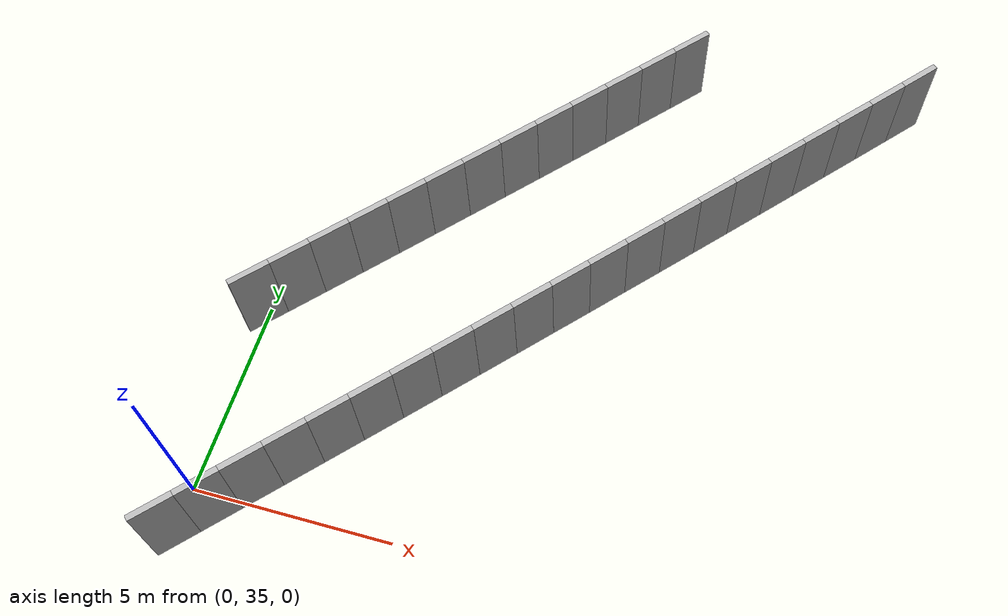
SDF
<?xml version="1.0" ?>
<sdf version="1.6">
  <model name="sps_4009">
    <pose frame="">0 0 0 0 -0 0</pose>
    <static>1</static>
    <self_collide>0</self_collide>
    <allow_auto_disable>0</allow_auto_disable>
    <link name="Wall3390">
      <kinematic>0</kinematic>
      <gravity>1</gravity>
      <self_collide>0</self_collide>
      <collision name="collision">
        <geometry>
          <box>
            <size>1.07602 0.15 2.5</size>
          </box>
        </geometry>
        <pose frame="">0 0 0 0 -0 0</pose>
      </collision>
      <visual name="visual">
        <geometry>
          <box>
            <size>1.07602 0.15 2.5</size>
          </box>
        </geometry>
        <pose frame="">0 0 0 0 -0 0</pose>
        <cast_shadows>1</cast_shadows>
        <transparency>0.0</transparency>
      </visual>
      <pose frame="">0.0122292 39.7161 1.25 0 -0 0.832745</pose>
    </link>
    <link name="Wall3391">
      <kinematic>0</kinematic>
      <gravity>1</gravity>
      <self_collide>0</self_collide>
      <collision name="collision">
        <geometry>
          <box>
            <size>1.07595 0.15 2.5</size>
          </box>
        </geometry>
        <pose frame="">0 0 0 0 -0 0</pose>
      </collision>
      <visual name="visual">
        <geometry>
          <box>
            <size>1.07595 0.15 2.5</size>
          </box>
        </geometry>
        <pose frame="">0 0 0 0 -0 0</pose>
        <cast_shadows>1</cast_shadows>
        <transparency>0.0</transparency>
      </visual>
      <pose frame="">0.73574 40.5125 1.25 0 -0 0.833912</pose>
    </link>
    <link name="Wall3392">
      <kinematic>0</kinematic>
      <gravity>1</gravity>
      <self_collide>0</self_collide>
      <collision name="collision">
        <geometry>
          <box>
            <size>1.07601 0.15 2.5</size>
          </box>
        </geometry>
        <pose frame="">0 0 0 0 -0 0</pose>
      </collision>
      <visual name="visual">
        <geometry>
          <box>
            <size>1.07601 0.15 2.5</size>
          </box>
        </geometry>
        <pose frame="">0 0 0 0 -0 0</pose>
        <cast_shadows>1</cast_shadows>
        <transparency>0.0</transparency>
      </visual>
      <pose frame="">1.45837 41.3097 1.25 0 -0 0.834954</pose>
    </link>
    <link name="Wall3393">
      <kinematic>0</kinematic>
      <gravity>1</gravity>
      <self_collide>0</self_collide>
      <collision name="collision">
        <geometry>
          <box>
            <size>1.07602 0.15 2.5</size>
          </box>
        </geometry>
        <pose frame="">0 0 0 0 -0 0</pose>
      </collision>
      <visual name="visual">
        <geometry>
          <box>
            <size>1.07602 0.15 2.5</size>
          </box>
        </geometry>
        <pose frame="">0 0 0 0 -0 0</pose>
        <cast_shadows>1</cast_shadows>
        <transparency>0.0</transparency>
      </visual>
      <pose frame="">2.18017 42.1077 1.25 0 -0 0.836038</pose>
    </link>
    <link name="Wall3394">
      <kinematic>0</kinematic>
      <gravity>1</gravity>
      <self_collide>0</self_collide>
      <collision name="collision">
        <geometry>
          <box>
            <size>1.07584 0.15 2.5</size>
          </box>
        </geometry>
        <pose frame="">0 0 0 0 -0 0</pose>
      </collision>
      <visual name="visual">
        <geometry>
          <box>
            <size>1.07584 0.15 2.5</size>
          </box>
        </geometry>
        <pose frame="">0 0 0 0 -0 0</pose>
        <cast_shadows>1</cast_shadows>
        <transparency>0.0</transparency>
      </visual>
      <pose frame="">2.90096 42.9065 1.25 0 -0 0.837332</pose>
    </link>
    <link name="Wall3395">
      <kinematic>0</kinematic>
      <gravity>1</gravity>
      <self_collide>0</self_collide>
      <collision name="collision">
        <geometry>
          <box>
            <size>1.07585 0.15 2.5</size>
          </box>
        </geometry>
        <pose frame="">0 0 0 0 -0 0</pose>
      </collision>
      <visual name="visual">
        <geometry>
          <box>
            <size>1.07585 0.15 2.5</size>
          </box>
        </geometry>
        <pose frame="">0 0 0 0 -0 0</pose>
        <cast_shadows>1</cast_shadows>
        <transparency>0.0</transparency>
      </visual>
      <pose frame="">3.62075 43.7061 1.25 0 -0 0.838416</pose>
    </link>
    <link name="Wall3396">
      <kinematic>0</kinematic>
      <gravity>1</gravity>
      <self_collide>0</self_collide>
      <collision name="collision">
        <geometry>
          <box>
            <size>1.07614 0.15 2.5</size>
          </box>
        </geometry>
        <pose frame="">0 0 0 0 -0 0</pose>
      </collision>
      <visual name="visual">
        <geometry>
          <box>
            <size>1.07614 0.15 2.5</size>
          </box>
        </geometry>
        <pose frame="">0 0 0 0 -0 0</pose>
        <cast_shadows>1</cast_shadows>
        <transparency>0.0</transparency>
      </visual>
      <pose frame="">4.33974 44.5066 1.25 0 -0 0.839566</pose>
    </link>
    <link name="Wall3397">
      <kinematic>0</kinematic>
      <gravity>1</gravity>
      <self_collide>0</self_collide>
      <collision name="collision">
        <geometry>
          <box>
            <size>1.07599 0.15 2.5</size>
          </box>
        </geometry>
        <pose frame="">0 0 0 0 -0 0</pose>
      </collision>
      <visual name="visual">
        <geometry>
          <box>
            <size>1.07599 0.15 2.5</size>
          </box>
        </geometry>
        <pose frame="">0 0 0 0 -0 0</pose>
        <cast_shadows>1</cast_shadows>
        <transparency>0.0</transparency>
      </visual>
      <pose frame="">5.05785 45.308 1.25 0 -0 0.840739</pose>
    </link>
    <link name="Wall3398">
      <kinematic>0</kinematic>
      <gravity>1</gravity>
      <self_collide>0</self_collide>
      <collision name="collision">
        <geometry>
          <box>
            <size>1.07558 0.15 2.5</size>
          </box>
        </geometry>
        <pose frame="">0 0 0 0 -0 0</pose>
      </collision>
      <visual name="visual">
        <geometry>
          <box>
            <size>1.07558 0.15 2.5</size>
          </box>
        </geometry>
        <pose frame="">0 0 0 0 -0 0</pose>
        <cast_shadows>1</cast_shadows>
        <transparency>0.0</transparency>
      </visual>
      <pose frame="">5.77486 46.11 1.25 0 -0 0.841845</pose>
    </link>
    <link name="Wall3399">
      <kinematic>0</kinematic>
      <gravity>1</gravity>
      <self_collide>0</self_collide>
      <collision name="collision">
        <geometry>
          <box>
            <size>1.07595 0.15 2.5</size>
          </box>
        </geometry>
        <pose frame="">0 0 0 0 -0 0</pose>
      </collision>
      <visual name="visual">
        <geometry>
          <box>
            <size>1.07595 0.15 2.5</size>
          </box>
        </geometry>
        <pose frame="">0 0 0 0 -0 0</pose>
        <cast_shadows>1</cast_shadows>
        <transparency>0.0</transparency>
      </visual>
      <pose frame="">6.49096 46.9128 1.25 0 -0 0.84299</pose>
    </link>
    <link name="Wall3400">
      <kinematic>0</kinematic>
      <gravity>1</gravity>
      <self_collide>0</self_collide>
      <collision name="collision">
        <geometry>
          <box>
            <size>1.07598 0.15 2.5</size>
          </box>
        </geometry>
        <pose frame="">0 0 0 0 -0 0</pose>
      </collision>
      <visual name="visual">
        <geometry>
          <box>
            <size>1.07598 0.15 2.5</size>
          </box>
        </geometry>
        <pose frame="">0 0 0 0 -0 0</pose>
        <cast_shadows>1</cast_shadows>
        <transparency>0.0</transparency>
      </visual>
      <pose frame="">7.20626 47.7166 1.25 0 -0 0.844154</pose>
    </link>
    <link name="Wall3401">
      <kinematic>0</kinematic>
      <gravity>1</gravity>
      <self_collide>0</self_collide>
      <collision name="collision">
        <geometry>
          <box>
            <size>1.07587 0.15 2.5</size>
          </box>
        </geometry>
        <pose frame="">0 0 0 0 -0 0</pose>
      </collision>
      <visual name="visual">
        <geometry>
          <box>
            <size>1.07587 0.15 2.5</size>
          </box>
        </geometry>
        <pose frame="">0 0 0 0 -0 0</pose>
        <cast_shadows>1</cast_shadows>
        <transparency>0.0</transparency>
      </visual>
      <pose frame="">7.92068 48.5211 1.25 0 -0 0.845125</pose>
    </link>
    <link name="Wall3402">
      <kinematic>0</kinematic>
      <gravity>1</gravity>
      <self_collide>0</self_collide>
      <collision name="collision">
        <geometry>
          <box>
            <size>1.07612 0.15 2.5</size>
          </box>
        </geometry>
        <pose frame="">0 0 0 0 -0 0</pose>
      </collision>
      <visual name="visual">
        <geometry>
          <box>
            <size>1.07612 0.15 2.5</size>
          </box>
        </geometry>
        <pose frame="">0 0 0 0 -0 0</pose>
        <cast_shadows>1</cast_shadows>
        <transparency>0.0</transparency>
      </visual>
      <pose frame="">8.63427 49.3264 1.25 0 -0 0.846316</pose>
    </link>
    <link name="Wall4188">
      <kinematic>0</kinematic>
      <gravity>1</gravity>
      <self_collide>0</self_collide>
      <collision name="collision">
        <geometry>
          <box>
            <size>1.08089 0.15 2.5</size>
          </box>
        </geometry>
        <pose frame="">0 0 0 0 -0 0</pose>
      </collision>
      <visual name="visual">
        <geometry>
          <box>
            <size>1.08089 0.15 2.5</size>
          </box>
        </geometry>
        <pose frame="">0 0 0 0 -0 0</pose>
        <cast_shadows>1</cast_shadows>
        <transparency>0.0</transparency>
      </visual>
      <pose frame="">0.158744 33.7386 1.25 0 -0 0.828055</pose>
    </link>
    <link name="Wall4189">
      <kinematic>0</kinematic>
      <gravity>1</gravity>
      <self_collide>0</self_collide>
      <collision name="collision">
        <geometry>
          <box>
            <size>1.08065 0.15 2.5</size>
          </box>
        </geometry>
        <pose frame="">0 0 0 0 -0 0</pose>
      </collision>
      <visual name="visual">
        <geometry>
          <box>
            <size>1.08065 0.15 2.5</size>
          </box>
        </geometry>
        <pose frame="">0 0 0 0 -0 0</pose>
        <cast_shadows>1</cast_shadows>
        <transparency>0.0</transparency>
      </visual>
      <pose frame="">0.889152 34.5352 1.25 0 -0 0.829383</pose>
    </link>
    <link name="Wall4190">
      <kinematic>0</kinematic>
      <gravity>1</gravity>
      <self_collide>0</self_collide>
      <collision name="collision">
        <geometry>
          <box>
            <size>1.08075 0.15 2.5</size>
          </box>
        </geometry>
        <pose frame="">0 0 0 0 -0 0</pose>
      </collision>
      <visual name="visual">
        <geometry>
          <box>
            <size>1.08075 0.15 2.5</size>
          </box>
        </geometry>
        <pose frame="">0 0 0 0 -0 0</pose>
        <cast_shadows>1</cast_shadows>
        <transparency>0.0</transparency>
      </visual>
      <pose frame="">1.61855 35.3326 1.25 0 -0 0.830459</pose>
    </link>
    <link name="Wall4191">
      <kinematic>0</kinematic>
      <gravity>1</gravity>
      <self_collide>0</self_collide>
      <collision name="collision">
        <geometry>
          <box>
            <size>1.08075 0.15 2.5</size>
          </box>
        </geometry>
        <pose frame="">0 0 0 0 -0 0</pose>
      </collision>
      <visual name="visual">
        <geometry>
          <box>
            <size>1.08075 0.15 2.5</size>
          </box>
        </geometry>
        <pose frame="">0 0 0 0 -0 0</pose>
        <cast_shadows>1</cast_shadows>
        <transparency>0.0</transparency>
      </visual>
      <pose frame="">2.34716 36.1308 1.25 0 -0 0.831458</pose>
    </link>
    <link name="Wall4192">
      <kinematic>0</kinematic>
      <gravity>1</gravity>
      <self_collide>0</self_collide>
      <collision name="collision">
        <geometry>
          <box>
            <size>1.08064 0.15 2.5</size>
          </box>
        </geometry>
        <pose frame="">0 0 0 0 -0 0</pose>
      </collision>
      <visual name="visual">
        <geometry>
          <box>
            <size>1.08064 0.15 2.5</size>
          </box>
        </geometry>
        <pose frame="">0 0 0 0 -0 0</pose>
        <cast_shadows>1</cast_shadows>
        <transparency>0.0</transparency>
      </visual>
      <pose frame="">3.07485 36.9298 1.25 0 -0 0.832662</pose>
    </link>
    <link name="Wall4193">
      <kinematic>0</kinematic>
      <gravity>1</gravity>
      <self_collide>0</self_collide>
      <collision name="collision">
        <geometry>
          <box>
            <size>1.08062 0.15 2.5</size>
          </box>
        </geometry>
        <pose frame="">0 0 0 0 -0 0</pose>
      </collision>
      <visual name="visual">
        <geometry>
          <box>
            <size>1.08062 0.15 2.5</size>
          </box>
        </geometry>
        <pose frame="">0 0 0 0 -0 0</pose>
        <cast_shadows>1</cast_shadows>
        <transparency>0.0</transparency>
      </visual>
      <pose frame="">3.80154 37.7296 1.25 0 -0 0.833863</pose>
    </link>
    <link name="Wall4194">
      <kinematic>0</kinematic>
      <gravity>1</gravity>
      <self_collide>0</self_collide>
      <collision name="collision">
        <geometry>
          <box>
            <size>1.08081 0.15 2.5</size>
          </box>
        </geometry>
        <pose frame="">0 0 0 0 -0 0</pose>
      </collision>
      <visual name="visual">
        <geometry>
          <box>
            <size>1.08081 0.15 2.5</size>
          </box>
        </geometry>
        <pose frame="">0 0 0 0 -0 0</pose>
        <cast_shadows>1</cast_shadows>
        <transparency>0.0</transparency>
      </visual>
      <pose frame="">4.52734 38.5303 1.25 0 -0 0.835014</pose>
    </link>
    <link name="Wall4195">
      <kinematic>0</kinematic>
      <gravity>1</gravity>
      <self_collide>0</self_collide>
      <collision name="collision">
        <geometry>
          <box>
            <size>1.08082 0.15 2.5</size>
          </box>
        </geometry>
        <pose frame="">0 0 0 0 -0 0</pose>
      </collision>
      <visual name="visual">
        <geometry>
          <box>
            <size>1.08082 0.15 2.5</size>
          </box>
        </geometry>
        <pose frame="">0 0 0 0 -0 0</pose>
        <cast_shadows>1</cast_shadows>
        <transparency>0.0</transparency>
      </visual>
      <pose frame="">5.25234 39.3319 1.25 0 -0 0.836013</pose>
    </link>
    <link name="Wall4196">
      <kinematic>0</kinematic>
      <gravity>1</gravity>
      <self_collide>0</self_collide>
      <collision name="collision">
        <geometry>
          <box>
            <size>1.08068 0.15 2.5</size>
          </box>
        </geometry>
        <pose frame="">0 0 0 0 -0 0</pose>
      </collision>
      <visual name="visual">
        <geometry>
          <box>
            <size>1.08068 0.15 2.5</size>
          </box>
        </geometry>
        <pose frame="">0 0 0 0 -0 0</pose>
        <cast_shadows>1</cast_shadows>
        <transparency>0.0</transparency>
      </visual>
      <pose frame="">5.97634 40.1343 1.25 0 -0 0.837419</pose>
    </link>
    <link name="Wall4197">
      <kinematic>0</kinematic>
      <gravity>1</gravity>
      <self_collide>0</self_collide>
      <collision name="collision">
        <geometry>
          <box>
            <size>1.08069 0.15 2.5</size>
          </box>
        </geometry>
        <pose frame="">0 0 0 0 -0 0</pose>
      </collision>
      <visual name="visual">
        <geometry>
          <box>
            <size>1.08069 0.15 2.5</size>
          </box>
        </geometry>
        <pose frame="">0 0 0 0 -0 0</pose>
        <cast_shadows>1</cast_shadows>
        <transparency>0.0</transparency>
      </visual>
      <pose frame="">6.69933 40.9375 1.25 0 -0 0.838418</pose>
    </link>
    <link name="Wall4198">
      <kinematic>0</kinematic>
      <gravity>1</gravity>
      <self_collide>0</self_collide>
      <collision name="collision">
        <geometry>
          <box>
            <size>1.08089 0.15 2.5</size>
          </box>
        </geometry>
        <pose frame="">0 0 0 0 -0 0</pose>
      </collision>
      <visual name="visual">
        <geometry>
          <box>
            <size>1.08089 0.15 2.5</size>
          </box>
        </geometry>
        <pose frame="">0 0 0 0 -0 0</pose>
        <cast_shadows>1</cast_shadows>
        <transparency>0.0</transparency>
      </visual>
      <pose frame="">7.42153 41.7416 1.25 0 -0 0.839568</pose>
    </link>
    <link name="Wall4199">
      <kinematic>0</kinematic>
      <gravity>1</gravity>
      <self_collide>0</self_collide>
      <collision name="collision">
        <geometry>
          <box>
            <size>1.08074 0.15 2.5</size>
          </box>
        </geometry>
        <pose frame="">0 0 0 0 -0 0</pose>
      </collision>
      <visual name="visual">
        <geometry>
          <box>
            <size>1.08074 0.15 2.5</size>
          </box>
        </geometry>
        <pose frame="">0 0 0 0 -0 0</pose>
        <cast_shadows>1</cast_shadows>
        <transparency>0.0</transparency>
      </visual>
      <pose frame="">8.14284 42.5465 1.25 0 -0 0.840655</pose>
    </link>
    <link name="Wall4200">
      <kinematic>0</kinematic>
      <gravity>1</gravity>
      <self_collide>0</self_collide>
      <collision name="collision">
        <geometry>
          <box>
            <size>1.08059 0.15 2.5</size>
          </box>
        </geometry>
        <pose frame="">0 0 0 0 -0 0</pose>
      </collision>
      <visual name="visual">
        <geometry>
          <box>
            <size>1.08059 0.15 2.5</size>
          </box>
        </geometry>
        <pose frame="">0 0 0 0 -0 0</pose>
        <cast_shadows>1</cast_shadows>
        <transparency>0.0</transparency>
      </visual>
      <pose frame="">8.86315 43.3521 1.25 0 -0 0.841823</pose>
    </link>
    <link name="Wall4201">
      <kinematic>0</kinematic>
      <gravity>1</gravity>
      <self_collide>0</self_collide>
      <collision name="collision">
        <geometry>
          <box>
            <size>1.0807 0.15 2.5</size>
          </box>
        </geometry>
        <pose frame="">0 0 0 0 -0 0</pose>
      </collision>
      <visual name="visual">
        <geometry>
          <box>
            <size>1.0807 0.15 2.5</size>
          </box>
        </geometry>
        <pose frame="">0 0 0 0 -0 0</pose>
        <cast_shadows>1</cast_shadows>
        <transparency>0.0</transparency>
      </visual>
      <pose frame="">9.58254 44.1585 1.25 0 -0 0.842897</pose>
    </link>
    <link name="Wall4202">
      <kinematic>0</kinematic>
      <gravity>1</gravity>
      <self_collide>0</self_collide>
      <collision name="collision">
        <geometry>
          <box>
            <size>1.0809 0.15 2.5</size>
          </box>
        </geometry>
        <pose frame="">0 0 0 0 -0 0</pose>
      </collision>
      <visual name="visual">
        <geometry>
          <box>
            <size>1.0809 0.15 2.5</size>
          </box>
        </geometry>
        <pose frame="">0 0 0 0 -0 0</pose>
        <cast_shadows>1</cast_shadows>
        <transparency>0.0</transparency>
      </visual>
      <pose frame="">10.3011 44.9658 1.25 0 -0 0.844046</pose>
    </link>
    <link name="Wall4203">
      <kinematic>0</kinematic>
      <gravity>1</gravity>
      <self_collide>0</self_collide>
      <collision name="collision">
        <geometry>
          <box>
            <size>1.08025 0.15 2.5</size>
          </box>
        </geometry>
        <pose frame="">0 0 0 0 -0 0</pose>
      </collision>
      <visual name="visual">
        <geometry>
          <box>
            <size>1.08025 0.15 2.5</size>
          </box>
        </geometry>
        <pose frame="">0 0 0 0 -0 0</pose>
        <cast_shadows>1</cast_shadows>
        <transparency>0.0</transparency>
      </visual>
      <pose frame="">11.0186 45.7738 1.25 0 -0 0.845243</pose>
    </link>
    <link name="Wall4204">
      <kinematic>0</kinematic>
      <gravity>1</gravity>
      <self_collide>0</self_collide>
      <collision name="collision">
        <geometry>
          <box>
            <size>1.08068 0.15 2.5</size>
          </box>
        </geometry>
        <pose frame="">0 0 0 0 -0 0</pose>
      </collision>
      <visual name="visual">
        <geometry>
          <box>
            <size>1.08068 0.15 2.5</size>
          </box>
        </geometry>
        <pose frame="">0 0 0 0 -0 0</pose>
        <cast_shadows>1</cast_shadows>
        <transparency>0.0</transparency>
      </visual>
      <pose frame="">11.735 46.5826 1.25 0 -0 0.846579</pose>
    </link>
    <link name="Wall4205">
      <kinematic>0</kinematic>
      <gravity>1</gravity>
      <self_collide>0</self_collide>
      <collision name="collision">
        <geometry>
          <box>
            <size>1.08082 0.15 2.5</size>
          </box>
        </geometry>
        <pose frame="">0 0 0 0 -0 0</pose>
      </collision>
      <visual name="visual">
        <geometry>
          <box>
            <size>1.08082 0.15 2.5</size>
          </box>
        </geometry>
        <pose frame="">0 0 0 0 -0 0</pose>
        <cast_shadows>1</cast_shadows>
        <transparency>0.0</transparency>
      </visual>
      <pose frame="">12.4507 47.3924 1.25 0 -0 0.847451</pose>
    </link>
    <link name="Wall4206">
      <kinematic>0</kinematic>
      <gravity>1</gravity>
      <self_collide>0</self_collide>
      <collision name="collision">
        <geometry>
          <box>
            <size>1.08064 0.15 2.5</size>
          </box>
        </geometry>
        <pose frame="">0 0 0 0 -0 0</pose>
      </collision>
      <visual name="visual">
        <geometry>
          <box>
            <size>1.08064 0.15 2.5</size>
          </box>
        </geometry>
        <pose frame="">0 0 0 0 -0 0</pose>
        <cast_shadows>1</cast_shadows>
        <transparency>0.0</transparency>
      </visual>
      <pose frame="">13.1656 48.2029 1.25 0 -0 0.848502</pose>
    </link>
    <link name="Wall4207">
      <kinematic>0</kinematic>
      <gravity>1</gravity>
      <self_collide>0</self_collide>
      <collision name="collision">
        <geometry>
          <box>
            <size>1.08073 0.15 2.5</size>
          </box>
        </geometry>
        <pose frame="">0 0 0 0 -0 0</pose>
      </collision>
      <visual name="visual">
        <geometry>
          <box>
            <size>1.08073 0.15 2.5</size>
          </box>
        </geometry>
        <pose frame="">0 0 0 0 -0 0</pose>
        <cast_shadows>1</cast_shadows>
        <transparency>0.0</transparency>
      </visual>
      <pose frame="">13.8795 49.0142 1.25 0 -0 0.849857</pose>
    </link>
    <link name="Wall4208">
      <kinematic>0</kinematic>
      <gravity>1</gravity>
      <self_collide>0</self_collide>
      <collision name="collision">
        <geometry>
          <box>
            <size>1.0808 0.15 2.5</size>
          </box>
        </geometry>
        <pose frame="">0 0 0 0 -0 0</pose>
      </collision>
      <visual name="visual">
        <geometry>
          <box>
            <size>1.0808 0.15 2.5</size>
          </box>
        </geometry>
        <pose frame="">0 0 0 0 -0 0</pose>
        <cast_shadows>1</cast_shadows>
        <transparency>0.0</transparency>
      </visual>
      <pose frame="">14.5926 49.8264 1.25 0 -0 0.850814</pose>
    </link>
  </model>
</sdf>
